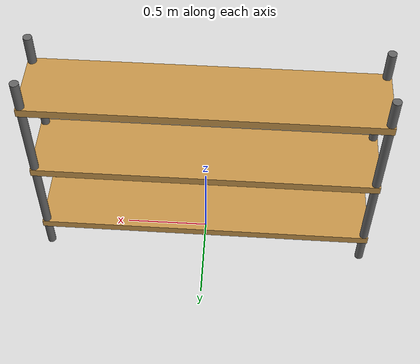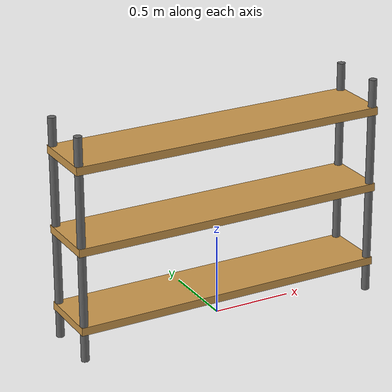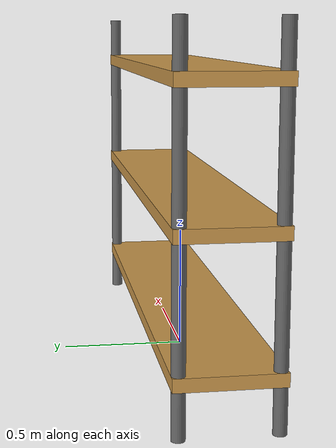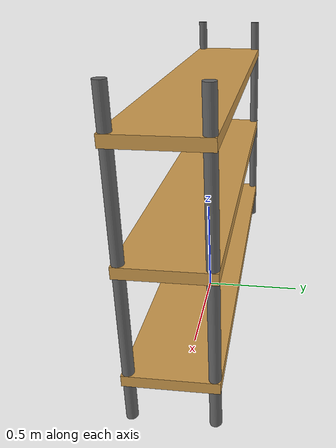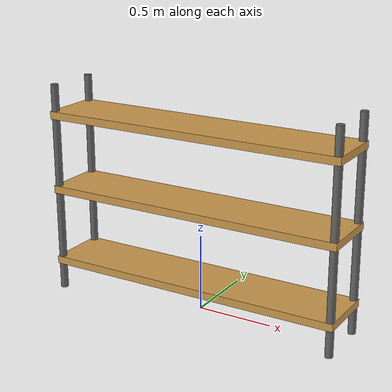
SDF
<?xml version="1.0" ?>
<sdf version="1.6">
  <model name="three_layer_shelf">
    <static>true</static>

    <link name="shelf_1">
      <pose>0 0 0.2 0 0 0</pose>
      <collision name="collision">
        <geometry>
          <box>
            <size>2.0 0.4 0.05</size>
          </box>
        </geometry>
      </collision>
      <visual name="visual">
        <geometry>
          <box>
            <size>2.0 0.4 0.05</size>
          </box>
        </geometry>
        <material>
          <ambient>0.8 0.6 0.3 1</ambient>
          <diffuse>0.8 0.6 0.3 1</diffuse>
        </material>
      </visual>
    </link>

    <link name="shelf_2">
      <pose>0 0 0.7 0 0 0</pose>
      <collision name="collision">
        <geometry>
          <box>
            <size>2.0 0.4 0.05</size>
          </box>
        </geometry>
      </collision>
      <visual name="visual">
        <geometry>
          <box>
            <size>2.0 0.4 0.05</size>
          </box>
        </geometry>
        <material>
          <ambient>0.8 0.6 0.3 1</ambient>
          <diffuse>0.8 0.6 0.3 1</diffuse>
        </material>
      </visual>
    </link>

    <link name="shelf_3">
      <pose>0 0 1.2 0 0 0</pose>
      <collision name="collision">
        <geometry>
          <box>
            <size>2.0 0.4 0.05</size>
          </box>
        </geometry>
      </collision>
      <visual name="visual">
        <geometry>
          <box>
            <size>2.0 0.4 0.05</size>
          </box>
        </geometry>
        <material>
          <ambient>0.8 0.6 0.3 1</ambient>
          <diffuse>0.8 0.6 0.3 1</diffuse>
        </material>
      </visual>
    </link>

    <link name="post_1">
      <pose>-0.975 -0.17500000000000002 0.7 0 0 0</pose>
      <collision name="collision">
        <geometry>
          <cylinder>
            <radius>0.025</radius>
            <length>1.4</length>
          </cylinder>
        </geometry>
      </collision>
      <visual name="visual">
        <geometry>
          <cylinder>
            <radius>0.025</radius>
            <length>1.4</length>
          </cylinder>
        </geometry>
        <material>
          <ambient>0.4 0.4 0.4 1</ambient>
          <diffuse>0.4 0.4 0.4 1</diffuse>
        </material>
      </visual>
    </link>

    <link name="post_2">
      <pose>-0.975 0.17500000000000002 0.7 0 0 0</pose>
      <collision name="collision">
        <geometry>
          <cylinder>
            <radius>0.025</radius>
            <length>1.4</length>
          </cylinder>
        </geometry>
      </collision>
      <visual name="visual">
        <geometry>
          <cylinder>
            <radius>0.025</radius>
            <length>1.4</length>
          </cylinder>
        </geometry>
        <material>
          <ambient>0.4 0.4 0.4 1</ambient>
          <diffuse>0.4 0.4 0.4 1</diffuse>
        </material>
      </visual>
    </link>

    <link name="post_3">
      <pose>0.975 -0.17500000000000002 0.7 0 0 0</pose>
      <collision name="collision">
        <geometry>
          <cylinder>
            <radius>0.025</radius>
            <length>1.4</length>
          </cylinder>
        </geometry>
      </collision>
      <visual name="visual">
        <geometry>
          <cylinder>
            <radius>0.025</radius>
            <length>1.4</length>
          </cylinder>
        </geometry>
        <material>
          <ambient>0.4 0.4 0.4 1</ambient>
          <diffuse>0.4 0.4 0.4 1</diffuse>
        </material>
      </visual>
    </link>

    <link name="post_4">
      <pose>0.975 0.17500000000000002 0.7 0 0 0</pose>
      <collision name="collision">
        <geometry>
          <cylinder>
            <radius>0.025</radius>
            <length>1.4</length>
          </cylinder>
        </geometry>
      </collision>
      <visual name="visual">
        <geometry>
          <cylinder>
            <radius>0.025</radius>
            <length>1.4</length>
          </cylinder>
        </geometry>
        <material>
          <ambient>0.4 0.4 0.4 1</ambient>
          <diffuse>0.4 0.4 0.4 1</diffuse>
        </material>
      </visual>
    </link>

</model>
</sdf>
